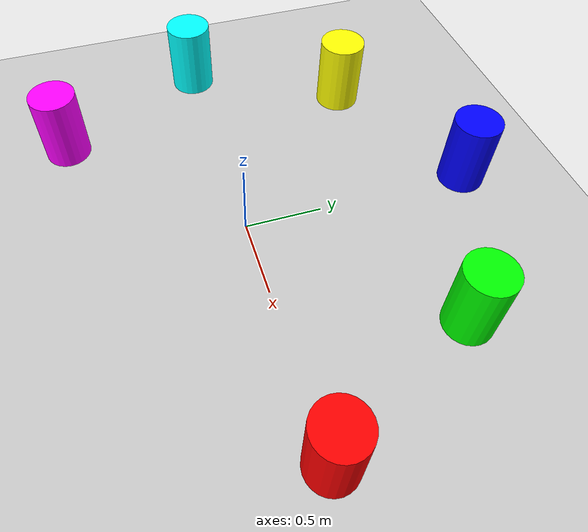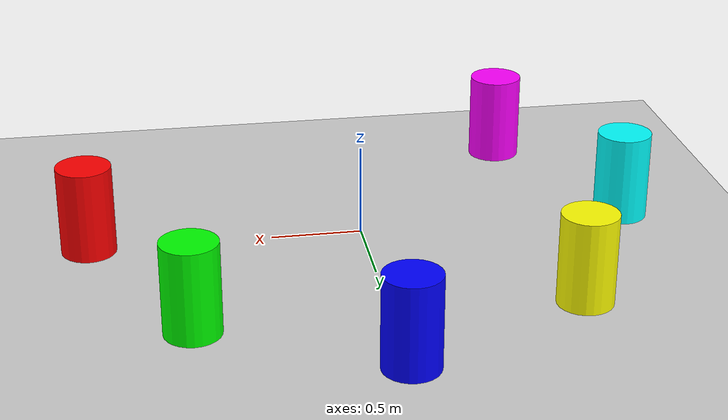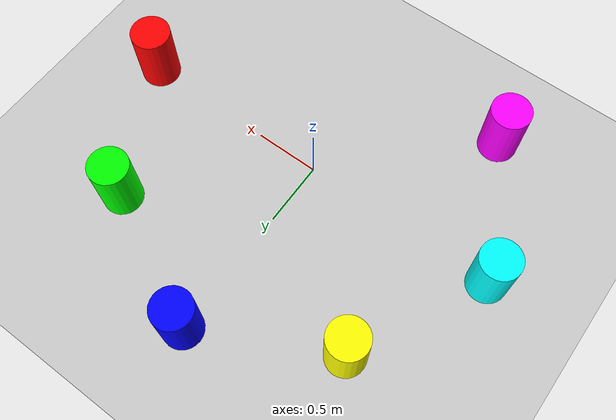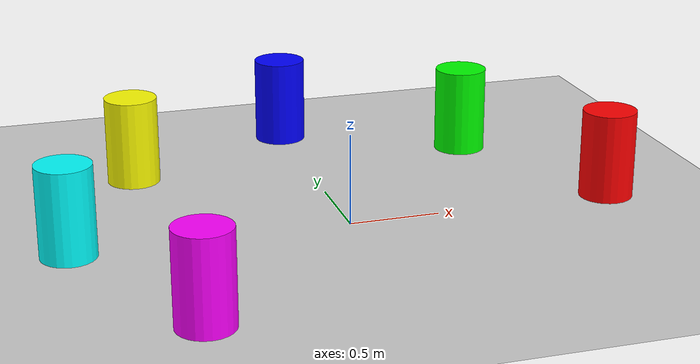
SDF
<sdf version="1.9">
 <world name="car_world">
  <physics name="1ms" type="ignored">
   <max_step_size>0.001</max_step_size>
   <real_time_factor>1</real_time_factor>
   <real_time_update_rate>1000</real_time_update_rate>
  </physics>
  <plugin name="ignition::gazebo::systems::Physics" filename="libignition-gazebo-physics-system.so"/>
  <plugin name="ignition::gazebo::systems::UserCommands" filename="libignition-gazebo-user-commands-system.so"/>
  <plugin name="ignition::gazebo::systems::SceneBroadcaster" filename="libignition-gazebo-scene-broadcaster-system.so"/>
  <plugin name="ignition::gazebo::systems::Imu" filename="libignition-gazebo-imu-system.so"/>
  <plugin name="ignition::gazebo::systems::Sensors" filename="libignition-gazebo-sensors-system.so">
   <render_engine>ogre2</render_engine>
  </plugin>
  <gravity>0 0 -9.8</gravity>
  <magnetic_field>6e-06 2.3e-05 -4.2e-05</magnetic_field>
  <atmosphere type="adiabatic"/>
  <scene><ambient>0.4 0.4 0.4 1</ambient><background>0.7 0.7 0.7 1</background><shadows>true</shadows></scene>
  <model name="ground_plane">
   <static>true</static>
   <link name="link">
    <collision name="collision">
     <geometry><plane><normal>0 0 1</normal><size>1 1</size></plane></geometry>
    </collision>
    <visual name="visual">
     <geometry><plane><normal>0 0 1</normal><size>100 100</size></plane></geometry>
     <material><ambient>0.8 0.8 0.8 1</ambient><diffuse>0.8 0.8 0.8 1</diffuse></material>
    </visual>
   </link>
  </model>
  <model name="cylinder_1">
   <static>true</static>
   <pose>1.5 0 0.25 0 0 0</pose>
   <link name="link">
    <collision name="c">
     <geometry><cylinder><radius>0.15</radius><length>0.5</length></cylinder></geometry>
    </collision>
    <visual name="v">
     <geometry><cylinder><radius>0.15</radius><length>0.5</length></cylinder></geometry>
     <material><ambient>1 0 0 1</ambient><diffuse>1 0 0 1</diffuse></material>
    </visual>
   </link>
  </model>
  <model name="cylinder_2">
   <static>true</static>
   <pose>1.0 1.0 0.25 0 0 0</pose>
   <link name="link">
    <collision name="c">
     <geometry><cylinder><radius>0.15</radius><length>0.5</length></cylinder></geometry>
    </collision>
    <visual name="v">
     <geometry><cylinder><radius>0.15</radius><length>0.5</length></cylinder></geometry>
     <material><ambient>0 1 0 1</ambient><diffuse>0 1 0 1</diffuse></material>
    </visual>
   </link>
  </model>
  <model name="cylinder_3">
   <static>true</static>
   <pose>0 1.5 0.25 0 0 0</pose>
   <link name="link">
    <collision name="c">
     <geometry><cylinder><radius>0.15</radius><length>0.5</length></cylinder></geometry>
    </collision>
    <visual name="v">
     <geometry><cylinder><radius>0.15</radius><length>0.5</length></cylinder></geometry>
     <material><ambient>0 0 1 1</ambient><diffuse>0 0 1 1</diffuse></material>
    </visual>
   </link>
  </model>
  <model name="cylinder_4">
   <static>true</static>
   <pose>-1.0 1.0 0.25 0 0 0</pose>
   <link name="link">
    <collision name="c">
     <geometry><cylinder><radius>0.15</radius><length>0.5</length></cylinder></geometry>
    </collision>
    <visual name="v">
     <geometry><cylinder><radius>0.15</radius><length>0.5</length></cylinder></geometry>
     <material><ambient>1 1 0 1</ambient><diffuse>1 1 0 1</diffuse></material>
    </visual>
   </link>
  </model>
  <model name="cylinder_5">
   <static>true</static>
   <pose>-1.5 0 0.25 0 0 0</pose>
   <link name="link">
    <collision name="c">
     <geometry><cylinder><radius>0.15</radius><length>0.5</length></cylinder></geometry>
    </collision>
    <visual name="v">
     <geometry><cylinder><radius>0.15</radius><length>0.5</length></cylinder></geometry>
     <material><ambient>0 1 1 1</ambient><diffuse>0 1 1 1</diffuse></material>
    </visual>
   </link>
  </model>
  <model name="cylinder_6">
   <static>true</static>
   <pose>-1.0 -1.0 0.25 0 0 0</pose>
   <link name="link">
    <collision name="c">
     <geometry><cylinder><radius>0.15</radius><length>0.5</length></cylinder></geometry>
    </collision>
    <visual name="v">
     <geometry><cylinder><radius>0.15</radius><length>0.5</length></cylinder></geometry>
     <material><ambient>1 0 1 1</ambient><diffuse>1 0 1 1</diffuse></material>
    </visual>
   </link>
  </model>
  <light name="sun" type="directional">
   <pose>0 0 10 0 -0 0</pose>
   <intensity>1</intensity>
   <direction>-0.5 0.1 -0.9</direction>
   <diffuse>0.8 0.8 0.8 1</diffuse>
   <specular>0.2 0.2 0.2 1</specular>
  </light>
 </world>
</sdf>
